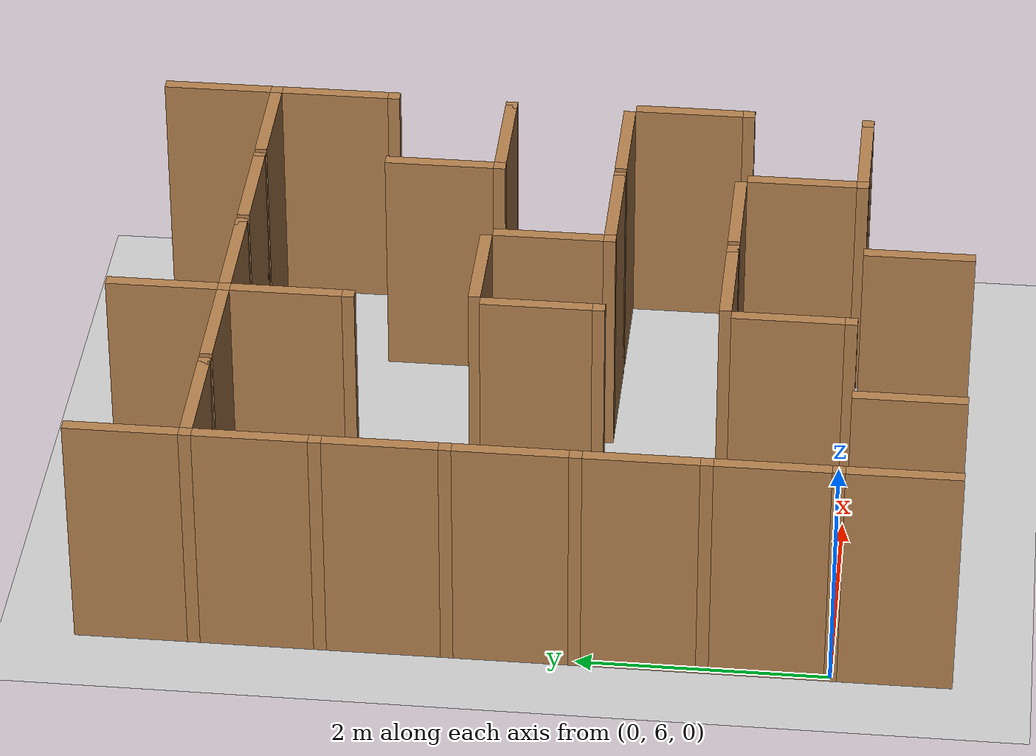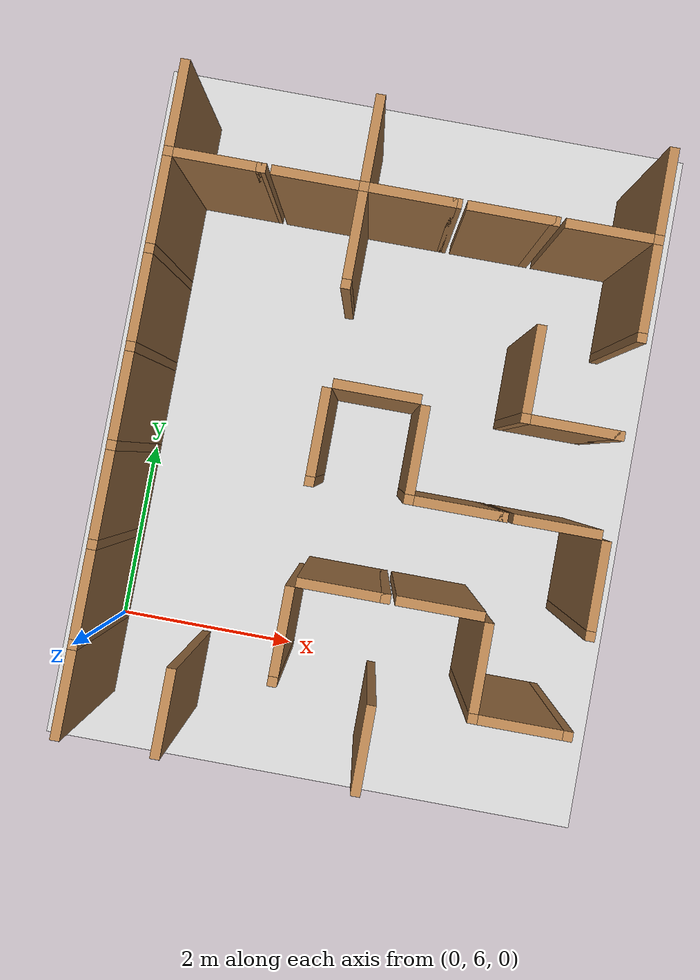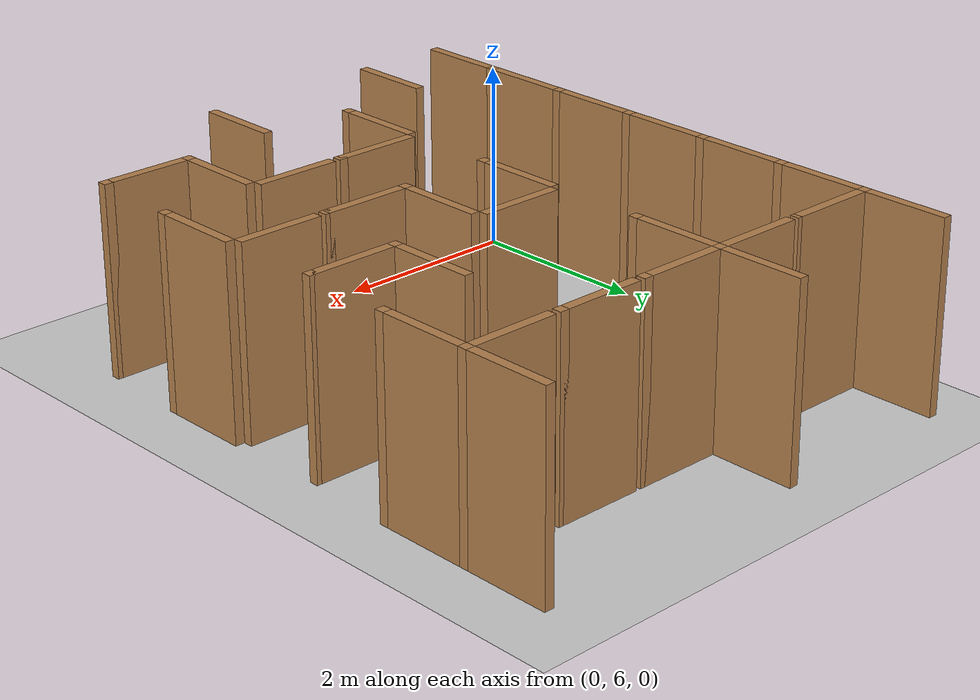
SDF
<sdf version="1.6">
 <world name="default">
  <include><uri>model://sun</uri></include>
  <model name="ground_plane">
   <static>true</static>
   <link name="link">
    <collision name="collision"><geometry><plane><size>12.0 12.0</size></plane></geometry></collision>
    <visual name="visual">
     <cast_shadows>false</cast_shadows>
     <geometry><plane><size>12.0 12.0</size></plane></geometry>
     <material>
      <script><uri>file://media/materials/scripts/gazebo.material</uri><name>Gazebo/Grey</name></script>
     </material>
    </visual>
   </link>
   <pose>6.0 6.0 0 0 0 0</pose>
  </model>
  <model name="vwall_5_0">
   <pose>0.0 5.5 1.0 0 0 0</pose>
   <link name="link">
    <collision name="collision"><geometry><box><size>0.1 0.9 2</size></box></geometry></collision>
    <visual name="visual">
     <geometry><box><size>0.1 0.9 2</size></box></geometry>
     <material>
      <script><uri>file://media/materials/scripts/gazebo.material</uri><name>Gazebo/Wood</name></script>
     </material>
    </visual>
   </link>
  </model>
  <model name="vwall_5_1">
   <pose>1.0 5.5 1.0 0 0 0</pose>
   <link name="link">
    <collision name="collision"><geometry><box><size>0.1 0.9 2</size></box></geometry></collision>
    <visual name="visual">
     <geometry><box><size>0.1 0.9 2</size></box></geometry>
     <material>
      <script><uri>file://media/materials/scripts/gazebo.material</uri><name>Gazebo/Wood</name></script>
     </material>
    </visual>
   </link>
  </model>
  <model name="vwall_5_3">
   <pose>3.0 5.5 1.0 0 0 0</pose>
   <link name="link">
    <collision name="collision"><geometry><box><size>0.1 0.9 2</size></box></geometry></collision>
    <visual name="visual">
     <geometry><box><size>0.1 0.9 2</size></box></geometry>
     <material>
      <script><uri>file://media/materials/scripts/gazebo.material</uri><name>Gazebo/Wood</name></script>
     </material>
    </visual>
   </link>
  </model>
  <model name="vwall_6_0">
   <pose>0.0 6.5 1.0 0 0 0</pose>
   <link name="link">
    <collision name="collision"><geometry><box><size>0.1 0.9 2</size></box></geometry></collision>
    <visual name="visual">
     <geometry><box><size>0.1 0.9 2</size></box></geometry>
     <material>
      <script><uri>file://media/materials/scripts/gazebo.material</uri><name>Gazebo/Wood</name></script>
     </material>
    </visual>
   </link>
  </model>
  <model name="joint_0.0_6.0">
   <pose>0.0 6.0 1.0 0 0 0</pose>
   <link name="link">
    <collision name="collision"><geometry><box><size>0.1 0.1 2</size></box></geometry></collision>
    <visual name="visual">
     <geometry><box><size>0.1 0.1 2</size></box></geometry>
     <material>
      <script><uri>file://media/materials/scripts/gazebo.material</uri><name>Gazebo/Wood</name></script>
     </material>
    </visual>
   </link>
  </model>
  <model name="vwall_6_2">
   <pose>2.0 6.5 1.0 0 0 0</pose>
   <link name="link">
    <collision name="collision"><geometry><box><size>0.1 0.9 2</size></box></geometry></collision>
    <visual name="visual">
     <geometry><box><size>0.1 0.9 2</size></box></geometry>
     <material>
      <script><uri>file://media/materials/scripts/gazebo.material</uri><name>Gazebo/Wood</name></script>
     </material>
    </visual>
   </link>
  </model>
  <model name="joint_2.0_6.0">
   <pose>2.0 6.0 1.0 0 0 0</pose>
   <link name="link">
    <collision name="collision"><geometry><box><size>0.1 0.1 2</size></box></geometry></collision>
    <visual name="visual">
     <geometry><box><size>0.1 0.1 2</size></box></geometry>
     <material>
      <script><uri>file://media/materials/scripts/gazebo.material</uri><name>Gazebo/Wood</name></script>
     </material>
    </visual>
   </link>
  </model>
  <model name="vwall_6_4">
   <pose>4.0 6.5 1.0 0 0 0</pose>
   <link name="link">
    <collision name="collision"><geometry><box><size>0.1 0.9 2</size></box></geometry></collision>
    <visual name="visual">
     <geometry><box><size>0.1 0.9 2</size></box></geometry>
     <material>
      <script><uri>file://media/materials/scripts/gazebo.material</uri><name>Gazebo/Wood</name></script>
     </material>
    </visual>
   </link>
  </model>
  <model name="joint_4.0_6.0">
   <pose>4.0 6.0 1.0 0 0 0</pose>
   <link name="link">
    <collision name="collision"><geometry><box><size>0.1 0.1 2</size></box></geometry></collision>
    <visual name="visual">
     <geometry><box><size>0.1 0.1 2</size></box></geometry>
     <material>
      <script><uri>file://media/materials/scripts/gazebo.material</uri><name>Gazebo/Wood</name></script>
     </material>
    </visual>
   </link>
  </model>
  <model name="vwall_7_0">
   <pose>0.0 7.5 1.0 0 0 0</pose>
   <link name="link">
    <collision name="collision"><geometry><box><size>0.1 0.9 2</size></box></geometry></collision>
    <visual name="visual">
     <geometry><box><size>0.1 0.9 2</size></box></geometry>
     <material>
      <script><uri>file://media/materials/scripts/gazebo.material</uri><name>Gazebo/Wood</name></script>
     </material>
    </visual>
   </link>
  </model>
  <model name="joint_0.0_7.0">
   <pose>0.0 7.0 1.0 0 0 0</pose>
   <link name="link">
    <collision name="collision"><geometry><box><size>0.1 0.1 2</size></box></geometry></collision>
    <visual name="visual">
     <geometry><box><size>0.1 0.1 2</size></box></geometry>
     <material>
      <script><uri>file://media/materials/scripts/gazebo.material</uri><name>Gazebo/Wood</name></script>
     </material>
    </visual>
   </link>
  </model>
  <model name="vwall_7_5">
   <pose>5.0 7.5 1.0 0 0 0</pose>
   <link name="link">
    <collision name="collision"><geometry><box><size>0.1 0.9 2</size></box></geometry></collision>
    <visual name="visual">
     <geometry><box><size>0.1 0.9 2</size></box></geometry>
     <material>
      <script><uri>file://media/materials/scripts/gazebo.material</uri><name>Gazebo/Wood</name></script>
     </material>
    </visual>
   </link>
  </model>
  <model name="joint_5.0_7.0">
   <pose>5.0 7.0 1.0 0 0 0</pose>
   <link name="link">
    <collision name="collision"><geometry><box><size>0.1 0.1 2</size></box></geometry></collision>
    <visual name="visual">
     <geometry><box><size>0.1 0.1 2</size></box></geometry>
     <material>
      <script><uri>file://media/materials/scripts/gazebo.material</uri><name>Gazebo/Wood</name></script>
     </material>
    </visual>
   </link>
  </model>
  <model name="vwall_8_0">
   <pose>0.0 8.5 1.0 0 0 0</pose>
   <link name="link">
    <collision name="collision"><geometry><box><size>0.1 0.9 2</size></box></geometry></collision>
    <visual name="visual">
     <geometry><box><size>0.1 0.9 2</size></box></geometry>
     <material>
      <script><uri>file://media/materials/scripts/gazebo.material</uri><name>Gazebo/Wood</name></script>
     </material>
    </visual>
   </link>
  </model>
  <model name="joint_0.0_8.0">
   <pose>0.0 8.0 1.0 0 0 0</pose>
   <link name="link">
    <collision name="collision"><geometry><box><size>0.1 0.1 2</size></box></geometry></collision>
    <visual name="visual">
     <geometry><box><size>0.1 0.1 2</size></box></geometry>
     <material>
      <script><uri>file://media/materials/scripts/gazebo.material</uri><name>Gazebo/Wood</name></script>
     </material>
    </visual>
   </link>
  </model>
  <model name="vwall_8_2">
   <pose>2.0 8.5 1.0 0 0 0</pose>
   <link name="link">
    <collision name="collision"><geometry><box><size>0.1 0.9 2</size></box></geometry></collision>
    <visual name="visual">
     <geometry><box><size>0.1 0.9 2</size></box></geometry>
     <material>
      <script><uri>file://media/materials/scripts/gazebo.material</uri><name>Gazebo/Wood</name></script>
     </material>
    </visual>
   </link>
  </model>
  <model name="joint_2.0_8.0">
   <pose>2.0 8.0 1.0 0 0 0</pose>
   <link name="link">
    <collision name="collision"><geometry><box><size>0.1 0.1 2</size></box></geometry></collision>
    <visual name="visual">
     <geometry><box><size>0.1 0.1 2</size></box></geometry>
     <material>
      <script><uri>file://media/materials/scripts/gazebo.material</uri><name>Gazebo/Wood</name></script>
     </material>
    </visual>
   </link>
  </model>
  <model name="vwall_8_3">
   <pose>3.0 8.5 1.0 0 0 0</pose>
   <link name="link">
    <collision name="collision"><geometry><box><size>0.1 0.9 2</size></box></geometry></collision>
    <visual name="visual">
     <geometry><box><size>0.1 0.9 2</size></box></geometry>
     <material>
      <script><uri>file://media/materials/scripts/gazebo.material</uri><name>Gazebo/Wood</name></script>
     </material>
    </visual>
   </link>
  </model>
  <model name="joint_3.0_8.0">
   <pose>3.0 8.0 1.0 0 0 0</pose>
   <link name="link">
    <collision name="collision"><geometry><box><size>0.1 0.1 2</size></box></geometry></collision>
    <visual name="visual">
     <geometry><box><size>0.1 0.1 2</size></box></geometry>
     <material>
      <script><uri>file://media/materials/scripts/gazebo.material</uri><name>Gazebo/Wood</name></script>
     </material>
    </visual>
   </link>
  </model>
  <model name="vwall_9_0">
   <pose>0.0 9.5 1.0 0 0 0</pose>
   <link name="link">
    <collision name="collision"><geometry><box><size>0.1 0.9 2</size></box></geometry></collision>
    <visual name="visual">
     <geometry><box><size>0.1 0.9 2</size></box></geometry>
     <material>
      <script><uri>file://media/materials/scripts/gazebo.material</uri><name>Gazebo/Wood</name></script>
     </material>
    </visual>
   </link>
  </model>
  <model name="joint_0.0_9.0">
   <pose>0.0 9.0 1.0 0 0 0</pose>
   <link name="link">
    <collision name="collision"><geometry><box><size>0.1 0.1 2</size></box></geometry></collision>
    <visual name="visual">
     <geometry><box><size>0.1 0.1 2</size></box></geometry>
     <material>
      <script><uri>file://media/materials/scripts/gazebo.material</uri><name>Gazebo/Wood</name></script>
     </material>
    </visual>
   </link>
  </model>
  <model name="vwall_9_4">
   <pose>4.0 9.5 1.0 0 0 0</pose>
   <link name="link">
    <collision name="collision"><geometry><box><size>0.1 0.9 2</size></box></geometry></collision>
    <visual name="visual">
     <geometry><box><size>0.1 0.9 2</size></box></geometry>
     <material>
      <script><uri>file://media/materials/scripts/gazebo.material</uri><name>Gazebo/Wood</name></script>
     </material>
    </visual>
   </link>
  </model>
  <model name="joint_4.0_9.0">
   <pose>4.0 9.0 1.0 0 0 0</pose>
   <link name="link">
    <collision name="collision"><geometry><box><size>0.1 0.1 2</size></box></geometry></collision>
    <visual name="visual">
     <geometry><box><size>0.1 0.1 2</size></box></geometry>
     <material>
      <script><uri>file://media/materials/scripts/gazebo.material</uri><name>Gazebo/Wood</name></script>
     </material>
    </visual>
   </link>
  </model>
  <model name="vwall_10_0">
   <pose>0.0 10.5 1.0 0 0 0</pose>
   <link name="link">
    <collision name="collision"><geometry><box><size>0.1 0.9 2</size></box></geometry></collision>
    <visual name="visual">
     <geometry><box><size>0.1 0.9 2</size></box></geometry>
     <material>
      <script><uri>file://media/materials/scripts/gazebo.material</uri><name>Gazebo/Wood</name></script>
     </material>
    </visual>
   </link>
  </model>
  <model name="joint_0.0_10.0">
   <pose>0.0 10.0 1.0 0 0 0</pose>
   <link name="link">
    <collision name="collision"><geometry><box><size>0.1 0.1 2</size></box></geometry></collision>
    <visual name="visual">
     <geometry><box><size>0.1 0.1 2</size></box></geometry>
     <material>
      <script><uri>file://media/materials/scripts/gazebo.material</uri><name>Gazebo/Wood</name></script>
     </material>
    </visual>
   </link>
  </model>
  <model name="vwall_10_2">
   <pose>2.0 10.5 1.0 0 0 0</pose>
   <link name="link">
    <collision name="collision"><geometry><box><size>0.1 0.9 2</size></box></geometry></collision>
    <visual name="visual">
     <geometry><box><size>0.1 0.9 2</size></box></geometry>
     <material>
      <script><uri>file://media/materials/scripts/gazebo.material</uri><name>Gazebo/Wood</name></script>
     </material>
    </visual>
   </link>
  </model>
  <model name="joint_2.0_10.0">
   <pose>2.0 10.0 1.0 0 0 0</pose>
   <link name="link">
    <collision name="collision"><geometry><box><size>0.1 0.1 2</size></box></geometry></collision>
    <visual name="visual">
     <geometry><box><size>0.1 0.1 2</size></box></geometry>
     <material>
      <script><uri>file://media/materials/scripts/gazebo.material</uri><name>Gazebo/Wood</name></script>
     </material>
    </visual>
   </link>
  </model>
  <model name="vwall_10_5">
   <pose>5.0 10.5 1.0 0 0 0</pose>
   <link name="link">
    <collision name="collision"><geometry><box><size>0.1 0.9 2</size></box></geometry></collision>
    <visual name="visual">
     <geometry><box><size>0.1 0.9 2</size></box></geometry>
     <material>
      <script><uri>file://media/materials/scripts/gazebo.material</uri><name>Gazebo/Wood</name></script>
     </material>
    </visual>
   </link>
  </model>
  <model name="joint_5.0_10.0">
   <pose>5.0 10.0 1.0 0 0 0</pose>
   <link name="link">
    <collision name="collision"><geometry><box><size>0.1 0.1 2</size></box></geometry></collision>
    <visual name="visual">
     <geometry><box><size>0.1 0.1 2</size></box></geometry>
     <material>
      <script><uri>file://media/materials/scripts/gazebo.material</uri><name>Gazebo/Wood</name></script>
     </material>
    </visual>
   </link>
  </model>
  <model name="vwall_11_0">
   <pose>0.0 11.5 1.0 0 0 0</pose>
   <link name="link">
    <collision name="collision"><geometry><box><size>0.1 0.9 2</size></box></geometry></collision>
    <visual name="visual">
     <geometry><box><size>0.1 0.9 2</size></box></geometry>
     <material>
      <script><uri>file://media/materials/scripts/gazebo.material</uri><name>Gazebo/Wood</name></script>
     </material>
    </visual>
   </link>
  </model>
  <model name="joint_0.0_11.0">
   <pose>0.0 11.0 1.0 0 0 0</pose>
   <link name="link">
    <collision name="collision"><geometry><box><size>0.1 0.1 2</size></box></geometry></collision>
    <visual name="visual">
     <geometry><box><size>0.1 0.1 2</size></box></geometry>
     <material>
      <script><uri>file://media/materials/scripts/gazebo.material</uri><name>Gazebo/Wood</name></script>
     </material>
    </visual>
   </link>
  </model>
  <model name="vwall_11_2">
   <pose>2.0 11.5 1.0 0 0 0</pose>
   <link name="link">
    <collision name="collision"><geometry><box><size>0.1 0.9 2</size></box></geometry></collision>
    <visual name="visual">
     <geometry><box><size>0.1 0.9 2</size></box></geometry>
     <material>
      <script><uri>file://media/materials/scripts/gazebo.material</uri><name>Gazebo/Wood</name></script>
     </material>
    </visual>
   </link>
  </model>
  <model name="joint_2.0_11.0">
   <pose>2.0 11.0 1.0 0 0 0</pose>
   <link name="link">
    <collision name="collision"><geometry><box><size>0.1 0.1 2</size></box></geometry></collision>
    <visual name="visual">
     <geometry><box><size>0.1 0.1 2</size></box></geometry>
     <material>
      <script><uri>file://media/materials/scripts/gazebo.material</uri><name>Gazebo/Wood</name></script>
     </material>
    </visual>
   </link>
  </model>
  <model name="vwall_11_5">
   <pose>5.0 11.5 1.0 0 0 0</pose>
   <link name="link">
    <collision name="collision"><geometry><box><size>0.1 0.9 2</size></box></geometry></collision>
    <visual name="visual">
     <geometry><box><size>0.1 0.9 2</size></box></geometry>
     <material>
      <script><uri>file://media/materials/scripts/gazebo.material</uri><name>Gazebo/Wood</name></script>
     </material>
    </visual>
   </link>
  </model>
  <model name="joint_5.0_11.0">
   <pose>5.0 11.0 1.0 0 0 0</pose>
   <link name="link">
    <collision name="collision"><geometry><box><size>0.1 0.1 2</size></box></geometry></collision>
    <visual name="visual">
     <geometry><box><size>0.1 0.1 2</size></box></geometry>
     <material>
      <script><uri>file://media/materials/scripts/gazebo.material</uri><name>Gazebo/Wood</name></script>
     </material>
    </visual>
   </link>
  </model>
  <model name="hwall_6_4">
   <pose>4.5 6.0 1.0 0 0 0</pose>
   <link name="link">
    <collision name="collision"><geometry><box><size>0.9 0.1 2</size></box></geometry></collision>
    <visual name="visual">
     <geometry><box><size>0.9 0.1 2</size></box></geometry>
     <material>
      <script><uri>file://media/materials/scripts/gazebo.material</uri><name>Gazebo/Wood</name></script>
     </material>
    </visual>
   </link>
  </model>
  <model name="joint_4.95_6.0">
   <pose>4.95 6.0 1.0 0 0 0</pose>
   <link name="link">
    <collision name="collision"><geometry><box><size>0.1 0.1 2</size></box></geometry></collision>
    <visual name="visual">
     <geometry><box><size>0.1 0.1 2</size></box></geometry>
     <material>
      <script><uri>file://media/materials/scripts/gazebo.material</uri><name>Gazebo/Wood</name></script>
     </material>
    </visual>
   </link>
  </model>
  <model name="hwall_7_2">
   <pose>2.5 7.0 1.0 0 0 0</pose>
   <link name="link">
    <collision name="collision"><geometry><box><size>0.9 0.1 2</size></box></geometry></collision>
    <visual name="visual">
     <geometry><box><size>0.9 0.1 2</size></box></geometry>
     <material>
      <script><uri>file://media/materials/scripts/gazebo.material</uri><name>Gazebo/Wood</name></script>
     </material>
    </visual>
   </link>
  </model>
  <model name="joint_2.95_7.0">
   <pose>2.95 7.0 1.0 0 0 0</pose>
   <link name="link">
    <collision name="collision"><geometry><box><size>0.1 0.1 2</size></box></geometry></collision>
    <visual name="visual">
     <geometry><box><size>0.1 0.1 2</size></box></geometry>
     <material>
      <script><uri>file://media/materials/scripts/gazebo.material</uri><name>Gazebo/Wood</name></script>
     </material>
    </visual>
   </link>
  </model>
  <model name="hwall_7_3">
   <pose>3.5 7.0 1.0 0 0 0</pose>
   <link name="link">
    <collision name="collision"><geometry><box><size>0.9 0.1 2</size></box></geometry></collision>
    <visual name="visual">
     <geometry><box><size>0.9 0.1 2</size></box></geometry>
     <material>
      <script><uri>file://media/materials/scripts/gazebo.material</uri><name>Gazebo/Wood</name></script>
     </material>
    </visual>
   </link>
  </model>
  <model name="hwall_8_3">
   <pose>3.5 8.0 1.0 0 0 0</pose>
   <link name="link">
    <collision name="collision"><geometry><box><size>0.9 0.1 2</size></box></geometry></collision>
    <visual name="visual">
     <geometry><box><size>0.9 0.1 2</size></box></geometry>
     <material>
      <script><uri>file://media/materials/scripts/gazebo.material</uri><name>Gazebo/Wood</name></script>
     </material>
    </visual>
   </link>
  </model>
  <model name="joint_3.95_8.0">
   <pose>3.95 8.0 1.0 0 0 0</pose>
   <link name="link">
    <collision name="collision"><geometry><box><size>0.1 0.1 2</size></box></geometry></collision>
    <visual name="visual">
     <geometry><box><size>0.1 0.1 2</size></box></geometry>
     <material>
      <script><uri>file://media/materials/scripts/gazebo.material</uri><name>Gazebo/Wood</name></script>
     </material>
    </visual>
   </link>
  </model>
  <model name="hwall_8_4">
   <pose>4.5 8.0 1.0 0 0 0</pose>
   <link name="link">
    <collision name="collision"><geometry><box><size>0.9 0.1 2</size></box></geometry></collision>
    <visual name="visual">
     <geometry><box><size>0.9 0.1 2</size></box></geometry>
     <material>
      <script><uri>file://media/materials/scripts/gazebo.material</uri><name>Gazebo/Wood</name></script>
     </material>
    </visual>
   </link>
  </model>
  <model name="hwall_9_2">
   <pose>2.5 9.0 1.0 0 0 0</pose>
   <link name="link">
    <collision name="collision"><geometry><box><size>0.9 0.1 2</size></box></geometry></collision>
    <visual name="visual">
     <geometry><box><size>0.9 0.1 2</size></box></geometry>
     <material>
      <script><uri>file://media/materials/scripts/gazebo.material</uri><name>Gazebo/Wood</name></script>
     </material>
    </visual>
   </link>
  </model>
  <model name="hwall_9_4">
   <pose>4.5 9.0 1.0 0 0 0</pose>
   <link name="link">
    <collision name="collision"><geometry><box><size>0.9 0.1 2</size></box></geometry></collision>
    <visual name="visual">
     <geometry><box><size>0.9 0.1 2</size></box></geometry>
     <material>
      <script><uri>file://media/materials/scripts/gazebo.material</uri><name>Gazebo/Wood</name></script>
     </material>
    </visual>
   </link>
  </model>
  <model name="joint_4.95_9.0">
   <pose>4.95 9.0 1.0 0 0 0</pose>
   <link name="link">
    <collision name="collision"><geometry><box><size>0.1 0.1 2</size></box></geometry></collision>
    <visual name="visual">
     <geometry><box><size>0.1 0.1 2</size></box></geometry>
     <material>
      <script><uri>file://media/materials/scripts/gazebo.material</uri><name>Gazebo/Wood</name></script>
     </material>
    </visual>
   </link>
  </model>
  <model name="hwall_11_0">
   <pose>0.5 11.0 1.0 0 0 0</pose>
   <link name="link">
    <collision name="collision"><geometry><box><size>0.9 0.1 2</size></box></geometry></collision>
    <visual name="visual">
     <geometry><box><size>0.9 0.1 2</size></box></geometry>
     <material>
      <script><uri>file://media/materials/scripts/gazebo.material</uri><name>Gazebo/Wood</name></script>
     </material>
    </visual>
   </link>
  </model>
  <model name="joint_0.95_11.0">
   <pose>0.95 11.0 1.0 0 0 0</pose>
   <link name="link">
    <collision name="collision"><geometry><box><size>0.1 0.1 2</size></box></geometry></collision>
    <visual name="visual">
     <geometry><box><size>0.1 0.1 2</size></box></geometry>
     <material>
      <script><uri>file://media/materials/scripts/gazebo.material</uri><name>Gazebo/Wood</name></script>
     </material>
    </visual>
   </link>
  </model>
  <model name="hwall_11_1">
   <pose>1.5 11.0 1.0 0 0 0</pose>
   <link name="link">
    <collision name="collision"><geometry><box><size>0.9 0.1 2</size></box></geometry></collision>
    <visual name="visual">
     <geometry><box><size>0.9 0.1 2</size></box></geometry>
     <material>
      <script><uri>file://media/materials/scripts/gazebo.material</uri><name>Gazebo/Wood</name></script>
     </material>
    </visual>
   </link>
  </model>
  <model name="hwall_11_2">
   <pose>2.5 11.0 1.0 0 0 0</pose>
   <link name="link">
    <collision name="collision"><geometry><box><size>0.9 0.1 2</size></box></geometry></collision>
    <visual name="visual">
     <geometry><box><size>0.9 0.1 2</size></box></geometry>
     <material>
      <script><uri>file://media/materials/scripts/gazebo.material</uri><name>Gazebo/Wood</name></script>
     </material>
    </visual>
   </link>
  </model>
  <model name="joint_2.95_11.0">
   <pose>2.95 11.0 1.0 0 0 0</pose>
   <link name="link">
    <collision name="collision"><geometry><box><size>0.1 0.1 2</size></box></geometry></collision>
    <visual name="visual">
     <geometry><box><size>0.1 0.1 2</size></box></geometry>
     <material>
      <script><uri>file://media/materials/scripts/gazebo.material</uri><name>Gazebo/Wood</name></script>
     </material>
    </visual>
   </link>
  </model>
  <model name="hwall_11_3">
   <pose>3.5 11.0 1.0 0 0 0</pose>
   <link name="link">
    <collision name="collision"><geometry><box><size>0.9 0.1 2</size></box></geometry></collision>
    <visual name="visual">
     <geometry><box><size>0.9 0.1 2</size></box></geometry>
     <material>
      <script><uri>file://media/materials/scripts/gazebo.material</uri><name>Gazebo/Wood</name></script>
     </material>
    </visual>
   </link>
  </model>
  <model name="joint_3.95_11.0">
   <pose>3.95 11.0 1.0 0 0 0</pose>
   <link name="link">
    <collision name="collision"><geometry><box><size>0.1 0.1 2</size></box></geometry></collision>
    <visual name="visual">
     <geometry><box><size>0.1 0.1 2</size></box></geometry>
     <material>
      <script><uri>file://media/materials/scripts/gazebo.material</uri><name>Gazebo/Wood</name></script>
     </material>
    </visual>
   </link>
  </model>
  <model name="hwall_11_4">
   <pose>4.5 11.0 1.0 0 0 0</pose>
   <link name="link">
    <collision name="collision"><geometry><box><size>0.9 0.1 2</size></box></geometry></collision>
    <visual name="visual">
     <geometry><box><size>0.9 0.1 2</size></box></geometry>
     <material>
      <script><uri>file://media/materials/scripts/gazebo.material</uri><name>Gazebo/Wood</name></script>
     </material>
    </visual>
   </link>
  </model>
 </world>
</sdf>
